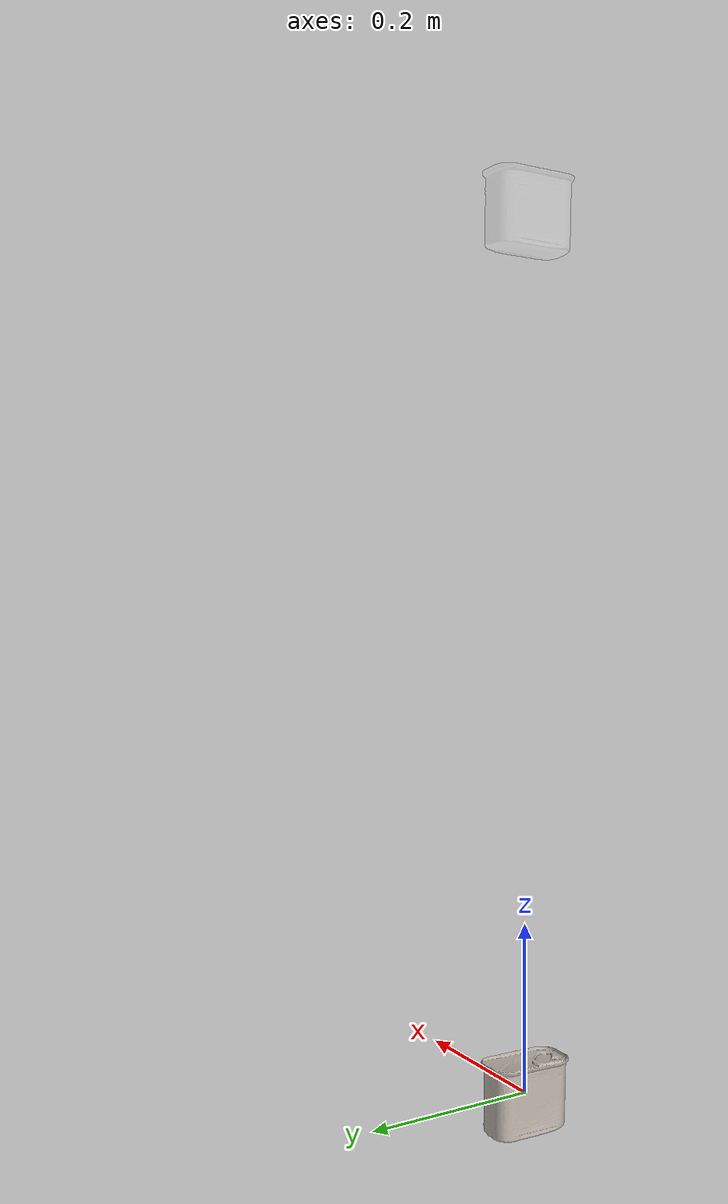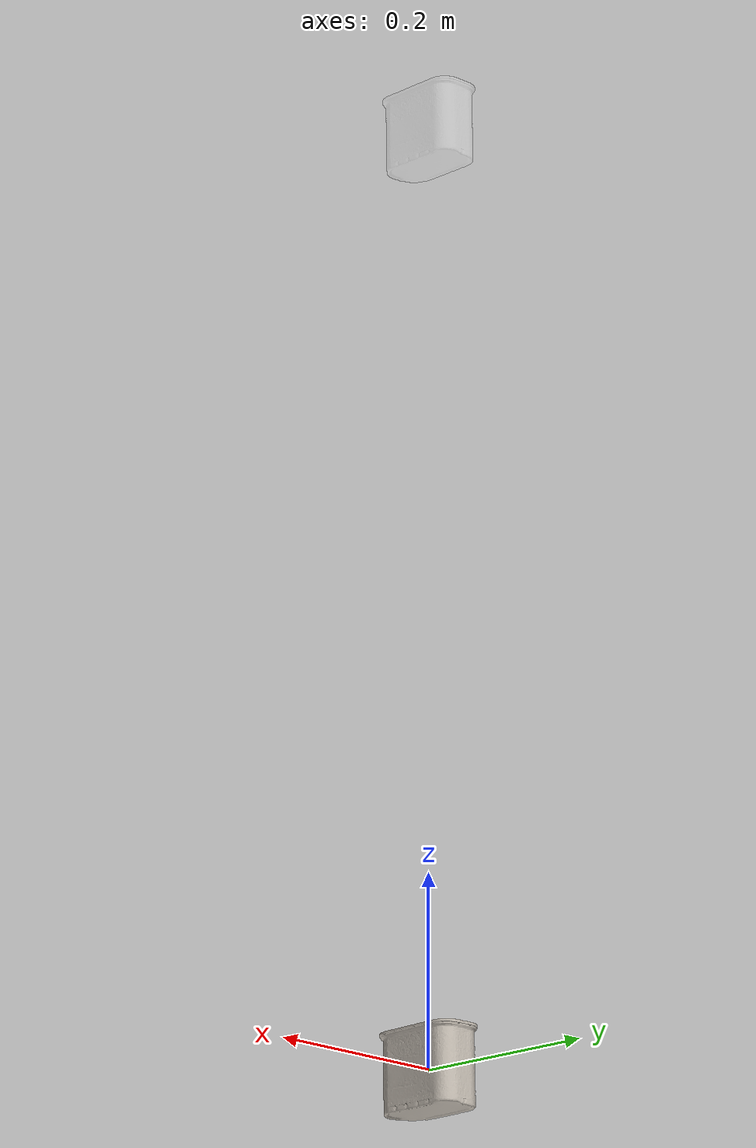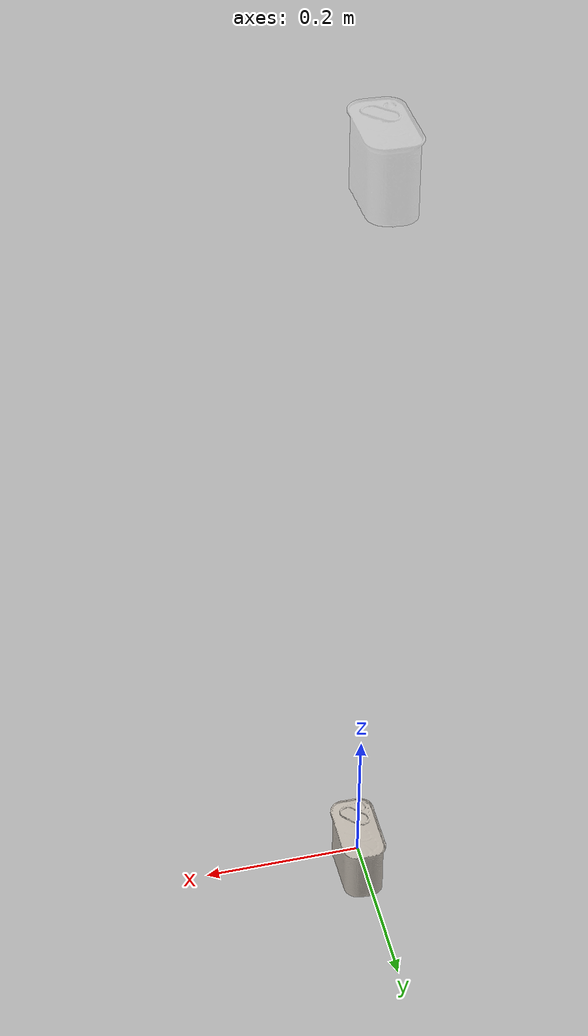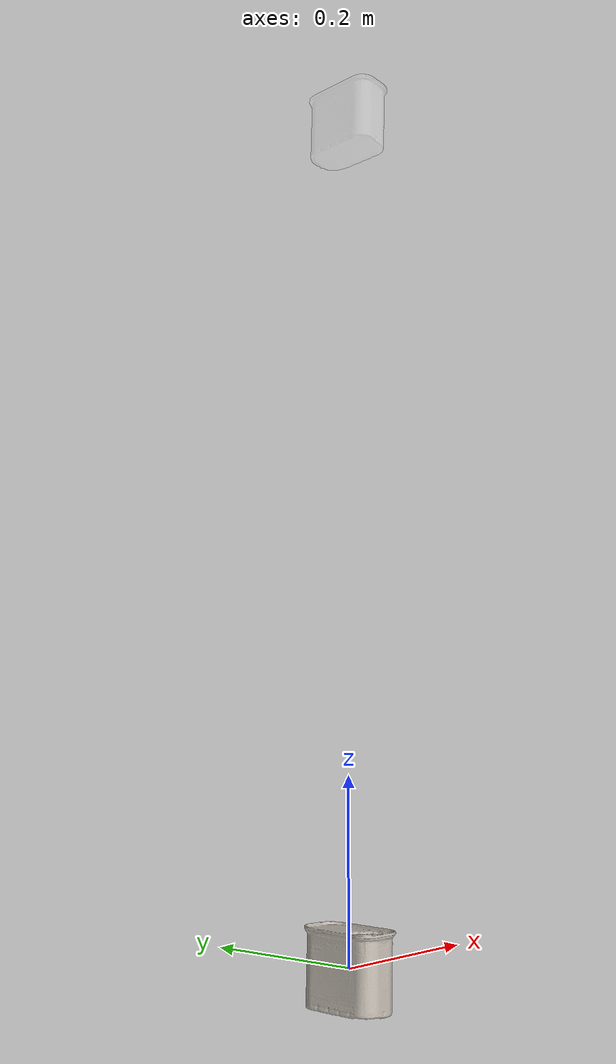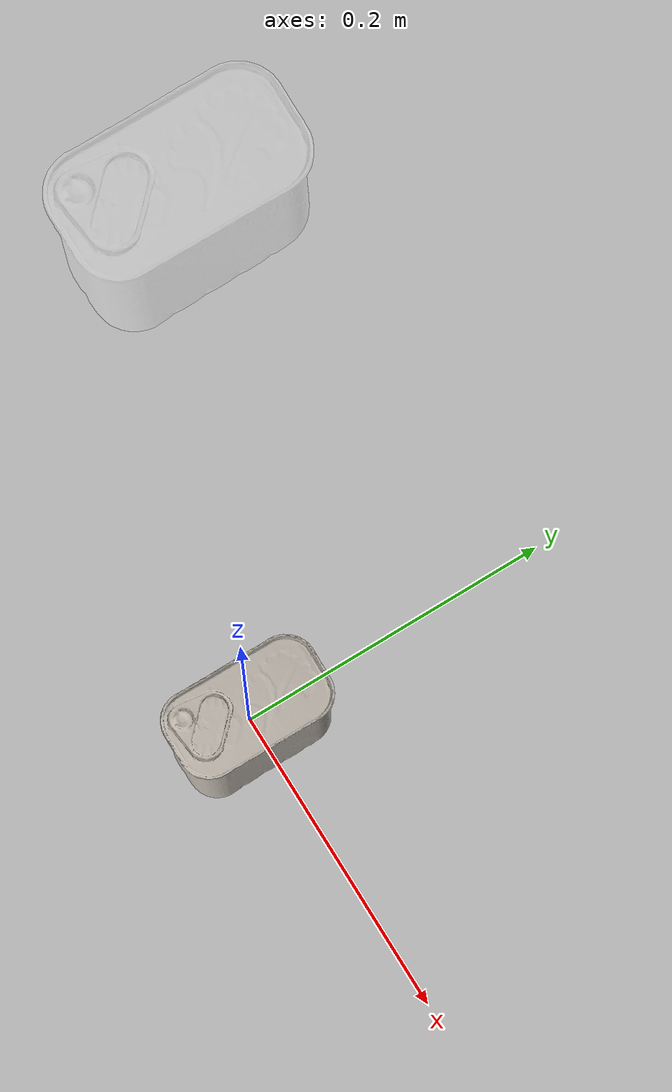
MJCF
<mujoco model="010_potted_meat_can">
  <compiler meshdir="assets" texturedir="assets"/>

  <default>
    <default class="ycb_visual">
      <geom group="2" type="mesh" contype="0" conaffinity="0" mass="0"/>
    </default>
    <default class="ycb_collision">
      <geom group="3" type="mesh" condim="6" priority="1" solref="0.01 2" solimp="0.99 0.999 0.001 0.5 1"/>
    </default>
  </default>

  <asset>
    <texture type="2d" name="texture_map" file="texture_map.png"/>
    <material name="material_0" texture="texture_map"/>
    <mesh file="010_potted_meat_can.obj"/>
    <mesh file="010_potted_meat_can_collision_0.obj"/>
    <mesh file="010_potted_meat_can_collision_1.obj"/>
    <mesh file="010_potted_meat_can_collision_2.obj"/>
    <mesh file="010_potted_meat_can_collision_3.obj"/>
    <mesh file="010_potted_meat_can_collision_4.obj"/>
    <mesh file="010_potted_meat_can_collision_5.obj"/>
    <mesh file="010_potted_meat_can_collision_6.obj"/>
    <mesh file="010_potted_meat_can_collision_7.obj"/>
    <mesh file="010_potted_meat_can_collision_8.obj"/>
    <mesh file="010_potted_meat_can_collision_9.obj"/>
    <mesh file="010_potted_meat_can_collision_10.obj"/>
    <mesh file="010_potted_meat_can_collision_11.obj"/>
    <mesh file="010_potted_meat_can_collision_12.obj"/>
    <mesh file="010_potted_meat_can_collision_13.obj"/>
    <mesh file="010_potted_meat_can_collision_14.obj"/>
    <mesh file="010_potted_meat_can_collision_15.obj"/>
    <mesh file="010_potted_meat_can_collision_16.obj"/>
    <mesh file="010_potted_meat_can_collision_17.obj"/>
    <mesh file="010_potted_meat_can_collision_18.obj"/>
    <mesh file="010_potted_meat_can_collision_19.obj"/>
    <mesh file="010_potted_meat_can_collision_20.obj"/>
    <mesh file="010_potted_meat_can_collision_21.obj"/>
    <mesh file="010_potted_meat_can_collision_22.obj"/>
    <mesh file="010_potted_meat_can_collision_23.obj"/>
    <mesh file="010_potted_meat_can_collision_24.obj"/>
    <mesh file="010_potted_meat_can_collision_25.obj"/>
    <mesh file="010_potted_meat_can_collision_26.obj"/>
    <mesh file="010_potted_meat_can_collision_27.obj"/>
    <mesh file="010_potted_meat_can_collision_28.obj"/>
    <mesh file="010_potted_meat_can_collision_29.obj"/>
    <mesh file="010_potted_meat_can_collision_30.obj"/>
    <mesh file="010_potted_meat_can_collision_31.obj"/>
    <mesh file="010_potted_meat_can_collision_32.obj"/>
  </asset>

  <worldbody>
    <body name="body">
      <inertial pos="0 0 0" mass="0.37" diaginertia="0.00045691 0.00033978 0.00026822"/>
      <joint name="joint" type='free' damping="0.005"/>
      <geom name="visual_geom" material="material_0" mesh="010_potted_meat_can" class="ycb_visual"/>
      <geom name="collision_geom_0" mesh="010_potted_meat_can_collision_0" rgba="0.43467094850537713 0.16258176487450182 0.03426073301021071 1" class="ycb_collision"/>
      <geom name="collision_geom_1" mesh="010_potted_meat_can_collision_1" rgba="0.043484124927096524 0.033574326899999285 0.3649699930046403 1" class="ycb_collision"/>
      <geom name="collision_geom_2" mesh="010_potted_meat_can_collision_2" rgba="0.6901625109504863 0.38550560520802035 0.4121238796742588 1" class="ycb_collision"/>
      <geom name="collision_geom_3" mesh="010_potted_meat_can_collision_3" rgba="0.3348730105818325 0.6887808512602926 0.040012873745265076 1" class="ycb_collision"/>
      <geom name="collision_geom_4" mesh="010_potted_meat_can_collision_4" rgba="0.8582114471801856 0.8790086128980157 0.18267549504734826 1" class="ycb_collision"/>
      <geom name="collision_geom_5" mesh="010_potted_meat_can_collision_5" rgba="0.736900632392754 0.547220502332131 0.43900039242525835 1" class="ycb_collision"/>
      <geom name="collision_geom_6" mesh="010_potted_meat_can_collision_6" rgba="0.19420526041142439 0.16468658892197197 0.4585509426931168 1" class="ycb_collision"/>
      <geom name="collision_geom_7" mesh="010_potted_meat_can_collision_7" rgba="0.5396068889811519 0.17534358866348887 0.22112873848464887 1" class="ycb_collision"/>
      <geom name="collision_geom_8" mesh="010_potted_meat_can_collision_8" rgba="0.8527488067983384 0.890604296084223 0.8295168307484104 1" class="ycb_collision"/>
      <geom name="collision_geom_9" mesh="010_potted_meat_can_collision_9" rgba="0.004152894470449975 0.6314886440990717 0.8768418790541403 1" class="ycb_collision"/>
      <geom name="collision_geom_10" mesh="010_potted_meat_can_collision_10" rgba="0.9874338613561064 0.3105091995098923 0.11660853693627415 1" class="ycb_collision"/>
      <geom name="collision_geom_11" mesh="010_potted_meat_can_collision_11" rgba="0.985766192162167 0.6106877128969755 0.2352662250280746 1" class="ycb_collision"/>
      <geom name="collision_geom_12" mesh="010_potted_meat_can_collision_12" rgba="0.9583694062442465 0.42971045446386524 0.019678842779148553 1" class="ycb_collision"/>
      <geom name="collision_geom_13" mesh="010_potted_meat_can_collision_13" rgba="0.7663525846745867 0.6013158787155366 0.8999736766955341 1" class="ycb_collision"/>
      <geom name="collision_geom_14" mesh="010_potted_meat_can_collision_14" rgba="0.41429404931858327 0.44525087616787407 0.4480478625396621 1" class="ycb_collision"/>
      <geom name="collision_geom_15" mesh="010_potted_meat_can_collision_15" rgba="0.2902483181614869 0.22124699539759662 0.8387843440213734 1" class="ycb_collision"/>
      <geom name="collision_geom_16" mesh="010_potted_meat_can_collision_16" rgba="0.8782140297487251 0.8741847785083464 0.22107835059633885 1" class="ycb_collision"/>
      <geom name="collision_geom_17" mesh="010_potted_meat_can_collision_17" rgba="0.31352163809949096 0.28342122670227343 0.5916687706063068 1" class="ycb_collision"/>
      <geom name="collision_geom_18" mesh="010_potted_meat_can_collision_18" rgba="0.40045453371371 0.43898873641040004 0.3826606603546021 1" class="ycb_collision"/>
      <geom name="collision_geom_19" mesh="010_potted_meat_can_collision_19" rgba="0.8464747420277963 0.9411781789751499 0.2046824696716235 1" class="ycb_collision"/>
      <geom name="collision_geom_20" mesh="010_potted_meat_can_collision_20" rgba="0.6372478146941674 0.9185954774366466 0.12190384451842917 1" class="ycb_collision"/>
      <geom name="collision_geom_21" mesh="010_potted_meat_can_collision_21" rgba="0.023036765830234285 0.8744689675804705 0.18671177774387815 1" class="ycb_collision"/>
      <geom name="collision_geom_22" mesh="010_potted_meat_can_collision_22" rgba="0.8703029599428344 0.643738069574249 0.9146324195784322 1" class="ycb_collision"/>
      <geom name="collision_geom_23" mesh="010_potted_meat_can_collision_23" rgba="0.996407373315841 0.14224804692403747 0.2907727207752173 1" class="ycb_collision"/>
      <geom name="collision_geom_24" mesh="010_potted_meat_can_collision_24" rgba="0.9183050215976358 0.6319867089808566 0.8258098869785127 1" class="ycb_collision"/>
      <geom name="collision_geom_25" mesh="010_potted_meat_can_collision_25" rgba="0.758587768747496 0.6056878679652021 0.83563160363468 1" class="ycb_collision"/>
      <geom name="collision_geom_26" mesh="010_potted_meat_can_collision_26" rgba="0.2980515787033826 0.9165399190988187 0.41088848913810927 1" class="ycb_collision"/>
      <geom name="collision_geom_27" mesh="010_potted_meat_can_collision_27" rgba="0.2562317339596004 0.6905999961550962 0.6598717912436314 1" class="ycb_collision"/>
      <geom name="collision_geom_28" mesh="010_potted_meat_can_collision_28" rgba="0.17713553858415454 0.141989777816671 0.22005677522022227 1" class="ycb_collision"/>
      <geom name="collision_geom_29" mesh="010_potted_meat_can_collision_29" rgba="0.31407163390483916 0.254218491324787 0.28867163902204196 1" class="ycb_collision"/>
      <geom name="collision_geom_30" mesh="010_potted_meat_can_collision_30" rgba="0.38972254769375625 0.009036361954938843 0.5779863044674931 1" class="ycb_collision"/>
      <geom name="collision_geom_31" mesh="010_potted_meat_can_collision_31" rgba="0.8809944521445987 0.32909917589624726 0.4265804785052676 1" class="ycb_collision"/>
      <geom name="collision_geom_32" mesh="010_potted_meat_can_collision_32" rgba="0.5531153858837263 0.02320977806953406 0.026794860090791017 1" class="ycb_collision"/>
      <site name="barcode" group="4" rgba="1 0 0 1" pos="-0.00522 -0.047954 0.005731" quat="0.5 0.5 -0.5 0.5"/>
    </body>

    <body name="target_body" mocap="true" pos="0 0 1" quat="1 0 0 0">
      <geom name="target_visual_geom"
            type="mesh"
            mesh="010_potted_meat_can"
            material="material_0"
            contype="0" conaffinity="0"
            group="2"
            rgba="1 1 1 0.25"/>
    </body>
  </worldbody>
</mujoco>
